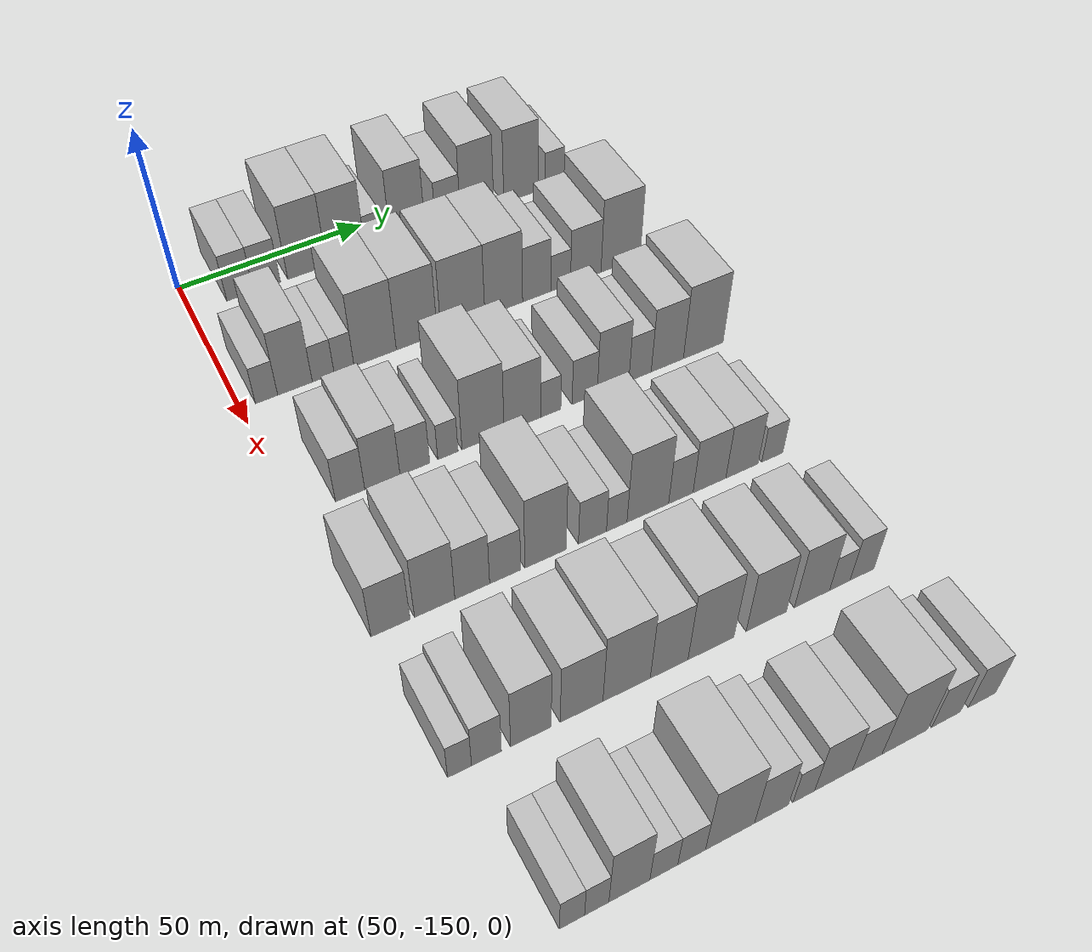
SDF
<sdf version="1.6">
 <world name="default">
  <model name="building_49">
   <static>1</static>
   <pose>50.0000 -137.1709 0 0.000000 0.000000 0.000000</pose>
   <link name="link">
    <pose>0 0 7.50 0 0 0</pose>
    <collision name="collision"><geometry><box><size>20.0000 7.0384 15.0000</size></box></geometry></collision>
    <visual name="visual">
     <cast_shadows>0</cast_shadows>
     <geometry><box><size>20.0000 7.0384 15.0000</size></box></geometry>
     <material>
      <script>
       <uri>model://HANNAS_wall/materials/scripts</uri>
       <uri>model://HANNAS_wall/materials/textures</uri>
       <name>vrc/HANNAS_wall</name>
      </script>
     </material>
    </visual>
   </link>
  </model>
  <model name="building_50">
   <static>1</static>
   <pose>50.0000 -130.0520 0 0.000000 0.000000 0.000000</pose>
   <link name="link">
    <pose>0 0 7.50 0 0 0</pose>
    <collision name="collision"><geometry><box><size>20.0000 7.1993 15.0000</size></box></geometry></collision>
    <visual name="visual">
     <cast_shadows>0</cast_shadows>
     <geometry><box><size>20.0000 7.1993 15.0000</size></box></geometry>
     <material>
      <script>
       <uri>model://HANNAS_wall/materials/scripts</uri>
       <uri>model://HANNAS_wall/materials/textures</uri>
       <name>vrc/HANNAS_wall</name>
      </script>
     </material>
    </visual>
   </link>
  </model>
  <model name="building_51">
   <static>1</static>
   <pose>50.0000 -119.1671 0 0.000000 0.000000 0.000000</pose>
   <link name="link">
    <pose>0 0 12.00 0 0 0</pose>
    <collision name="collision"><geometry><box><size>20.0000 10.5705 24.0000</size></box></geometry></collision>
    <visual name="visual">
     <cast_shadows>0</cast_shadows>
     <geometry><box><size>20.0000 10.5705 24.0000</size></box></geometry>
     <material>
      <script>
       <uri>model://HANNAS_wall/materials/scripts</uri>
       <uri>model://HANNAS_wall/materials/textures</uri>
       <name>vrc/HANNAS_wall</name>
      </script>
     </material>
    </visual>
   </link>
  </model>
  <model name="building_52">
   <static>1</static>
   <pose>50.0000 -108.5441 0 0.000000 0.000000 0.000000</pose>
   <link name="link">
    <pose>0 0 12.00 0 0 0</pose>
    <collision name="collision"><geometry><box><size>20.0000 10.6756 24.0000</size></box></geometry></collision>
    <visual name="visual">
     <cast_shadows>0</cast_shadows>
     <geometry><box><size>20.0000 10.6756 24.0000</size></box></geometry>
     <material>
      <script>
       <uri>model://HANNAS_wall/materials/scripts</uri>
       <uri>model://HANNAS_wall/materials/textures</uri>
       <name>vrc/HANNAS_wall</name>
      </script>
     </material>
    </visual>
   </link>
  </model>
  <model name="building_53">
   <static>1</static>
   <pose>50.0000 -100.6316 0 0.000000 0.000000 0.000000</pose>
   <link name="link">
    <pose>0 0 6.00 0 0 0</pose>
    <collision name="collision"><geometry><box><size>20.0000 5.1494 12.0000</size></box></geometry></collision>
    <visual name="visual">
     <cast_shadows>0</cast_shadows>
     <geometry><box><size>20.0000 5.1494 12.0000</size></box></geometry>
     <material>
      <script>
       <uri>model://HANNAS_wall/materials/scripts</uri>
       <uri>model://HANNAS_wall/materials/textures</uri>
       <name>vrc/HANNAS_wall</name>
      </script>
     </material>
    </visual>
   </link>
  </model>
  <model name="building_54">
   <static>1</static>
   <pose>50.0000 -91.1254 0 0.000000 0.000000 0.000000</pose>
   <link name="link">
    <pose>0 0 12.00 0 0 0</pose>
    <collision name="collision"><geometry><box><size>20.0000 9.8629 24.0000</size></box></geometry></collision>
    <visual name="visual">
     <cast_shadows>0</cast_shadows>
     <geometry><box><size>20.0000 9.8629 24.0000</size></box></geometry>
     <material>
      <script>
       <uri>model://HANNAS_wall/materials/scripts</uri>
       <uri>model://HANNAS_wall/materials/textures</uri>
       <name>vrc/HANNAS_wall</name>
      </script>
     </material>
    </visual>
   </link>
  </model>
  <model name="building_55">
   <static>1</static>
   <pose>50.0000 -79.5710 0 0.000000 0.000000 0.000000</pose>
   <link name="link">
    <pose>0 0 7.50 0 0 0</pose>
    <collision name="collision"><geometry><box><size>20.0000 7.2459 15.0000</size></box></geometry></collision>
    <visual name="visual">
     <cast_shadows>0</cast_shadows>
     <geometry><box><size>20.0000 7.2459 15.0000</size></box></geometry>
     <material>
      <script>
       <uri>model://HANNAS_wall/materials/scripts</uri>
       <uri>model://HANNAS_wall/materials/textures</uri>
       <name>vrc/HANNAS_wall</name>
      </script>
     </material>
    </visual>
   </link>
  </model>
  <model name="building_56">
   <static>1</static>
   <pose>50.0000 -71.0310 0 0.000000 0.000000 0.000000</pose>
   <link name="link">
    <pose>0 0 12.00 0 0 0</pose>
    <collision name="collision"><geometry><box><size>20.0000 9.8340 24.0000</size></box></geometry></collision>
    <visual name="visual">
     <cast_shadows>0</cast_shadows>
     <geometry><box><size>20.0000 9.8340 24.0000</size></box></geometry>
     <material>
      <script>
       <uri>model://HANNAS_wall/materials/scripts</uri>
       <uri>model://HANNAS_wall/materials/textures</uri>
       <name>vrc/HANNAS_wall</name>
      </script>
     </material>
    </visual>
   </link>
  </model>
  <model name="building_57">
   <static>1</static>
   <pose>50.0000 -57.8499 0 0.000000 0.000000 0.000000</pose>
   <link name="link">
    <pose>0 0 12.00 0 0 0</pose>
    <collision name="collision"><geometry><box><size>20.0000 10.5282 24.0000</size></box></geometry></collision>
    <visual name="visual">
     <cast_shadows>0</cast_shadows>
     <geometry><box><size>20.0000 10.5282 24.0000</size></box></geometry>
     <material>
      <script>
       <uri>model://HANNAS_wall/materials/scripts</uri>
       <uri>model://HANNAS_wall/materials/textures</uri>
       <name>vrc/HANNAS_wall</name>
      </script>
     </material>
    </visual>
   </link>
  </model>
  <model name="building_58">
   <static>1</static>
   <pose>50.0000 -47.6868 0 0.000000 0.000000 0.000000</pose>
   <link name="link">
    <pose>0 0 6.00 0 0 0</pose>
    <collision name="collision"><geometry><box><size>20.0000 5.7981 12.0000</size></box></geometry></collision>
    <visual name="visual">
     <cast_shadows>0</cast_shadows>
     <geometry><box><size>20.0000 5.7981 12.0000</size></box></geometry>
     <material>
      <script>
       <uri>model://HANNAS_wall/materials/scripts</uri>
       <uri>model://HANNAS_wall/materials/textures</uri>
       <name>vrc/HANNAS_wall</name>
      </script>
     </material>
    </visual>
   </link>
  </model>
  <model name="building_173">
   <static>1</static>
   <pose>85.0000 -143.4354 0 0.000000 0.000000 0.000000</pose>
   <link name="link">
    <pose>0 0 6.00 0 0 0</pose>
    <collision name="collision"><geometry><box><size>20.0000 5.5466 12.0000</size></box></geometry></collision>
    <visual name="visual">
     <cast_shadows>0</cast_shadows>
     <geometry><box><size>20.0000 5.5466 12.0000</size></box></geometry>
     <material>
      <script>
       <uri>model://HANNAS_wall/materials/scripts</uri>
       <uri>model://HANNAS_wall/materials/textures</uri>
       <name>vrc/HANNAS_wall</name>
      </script>
     </material>
    </visual>
   </link>
  </model>
  <model name="building_174">
   <static>1</static>
   <pose>85.0000 -136.2923 0 0.000000 0.000000 0.000000</pose>
   <link name="link">
    <pose>0 0 10.50 0 0 0</pose>
    <collision name="collision"><geometry><box><size>20.0000 8.7397 21.0000</size></box></geometry></collision>
    <visual name="visual">
     <cast_shadows>0</cast_shadows>
     <geometry><box><size>20.0000 8.7397 21.0000</size></box></geometry>
     <material>
      <script>
       <uri>model://HANNAS_wall/materials/scripts</uri>
       <uri>model://HANNAS_wall/materials/textures</uri>
       <name>vrc/HANNAS_wall</name>
      </script>
     </material>
    </visual>
   </link>
  </model>
  <model name="building_175">
   <static>1</static>
   <pose>85.0000 -129.1455 0 0.000000 0.000000 0.000000</pose>
   <link name="link">
    <pose>0 0 6.00 0 0 0</pose>
    <collision name="collision"><geometry><box><size>20.0000 5.5538 12.0000</size></box></geometry></collision>
    <visual name="visual">
     <cast_shadows>0</cast_shadows>
     <geometry><box><size>20.0000 5.5538 12.0000</size></box></geometry>
     <material>
      <script>
       <uri>model://HANNAS_wall/materials/scripts</uri>
       <uri>model://HANNAS_wall/materials/textures</uri>
       <name>vrc/HANNAS_wall</name>
      </script>
     </material>
    </visual>
   </link>
  </model>
  <model name="building_176">
   <static>1</static>
   <pose>85.0000 -123.8067 0 0.000000 0.000000 0.000000</pose>
   <link name="link">
    <pose>0 0 6.00 0 0 0</pose>
    <collision name="collision"><geometry><box><size>20.0000 5.1237 12.0000</size></box></geometry></collision>
    <visual name="visual">
     <cast_shadows>0</cast_shadows>
     <geometry><box><size>20.0000 5.1237 12.0000</size></box></geometry>
     <material>
      <script>
       <uri>model://HANNAS_wall/materials/scripts</uri>
       <uri>model://HANNAS_wall/materials/textures</uri>
       <name>vrc/HANNAS_wall</name>
      </script>
     </material>
    </visual>
   </link>
  </model>
  <model name="building_177">
   <static>1</static>
   <pose>85.0000 -115.7105 0 0.000000 0.000000 0.000000</pose>
   <link name="link">
    <pose>0 0 12.00 0 0 0</pose>
    <collision name="collision"><geometry><box><size>20.0000 11.0686 24.0000</size></box></geometry></collision>
    <visual name="visual">
     <cast_shadows>0</cast_shadows>
     <geometry><box><size>20.0000 11.0686 24.0000</size></box></geometry>
     <material>
      <script>
       <uri>model://HANNAS_wall/materials/scripts</uri>
       <uri>model://HANNAS_wall/materials/textures</uri>
       <name>vrc/HANNAS_wall</name>
      </script>
     </material>
    </visual>
   </link>
  </model>
  <model name="building_178">
   <static>1</static>
   <pose>85.0000 -104.7043 0 0.000000 0.000000 0.000000</pose>
   <link name="link">
    <pose>0 0 12.00 0 0 0</pose>
    <collision name="collision"><geometry><box><size>20.0000 10.9438 24.0000</size></box></geometry></collision>
    <visual name="visual">
     <cast_shadows>0</cast_shadows>
     <geometry><box><size>20.0000 10.9438 24.0000</size></box></geometry>
     <material>
      <script>
       <uri>model://HANNAS_wall/materials/scripts</uri>
       <uri>model://HANNAS_wall/materials/textures</uri>
       <name>vrc/HANNAS_wall</name>
      </script>
     </material>
    </visual>
   </link>
  </model>
  <model name="building_179">
   <static>1</static>
   <pose>85.0000 -92.2445 0 0.000000 0.000000 0.000000</pose>
   <link name="link">
    <pose>0 0 12.00 0 0 0</pose>
    <collision name="collision"><geometry><box><size>20.0000 11.9758 24.0000</size></box></geometry></collision>
    <visual name="visual">
     <cast_shadows>0</cast_shadows>
     <geometry><box><size>20.0000 11.9758 24.0000</size></box></geometry>
     <material>
      <script>
       <uri>model://HANNAS_wall/materials/scripts</uri>
       <uri>model://HANNAS_wall/materials/textures</uri>
       <name>vrc/HANNAS_wall</name>
      </script>
     </material>
    </visual>
   </link>
  </model>
  <model name="building_180">
   <static>1</static>
   <pose>85.0000 -81.0011 0 0.000000 0.000000 0.000000</pose>
   <link name="link">
    <pose>0 0 12.00 0 0 0</pose>
    <collision name="collision"><geometry><box><size>20.0000 10.5111 24.0000</size></box></geometry></collision>
    <visual name="visual">
     <cast_shadows>0</cast_shadows>
     <geometry><box><size>20.0000 10.5111 24.0000</size></box></geometry>
     <material>
      <script>
       <uri>model://HANNAS_wall/materials/scripts</uri>
       <uri>model://HANNAS_wall/materials/textures</uri>
       <name>vrc/HANNAS_wall</name>
      </script>
     </material>
    </visual>
   </link>
  </model>
  <model name="building_181">
   <static>1</static>
   <pose>85.0000 -71.7734 0 0.000000 0.000000 0.000000</pose>
   <link name="link">
    <pose>0 0 9.00 0 0 0</pose>
    <collision name="collision"><geometry><box><size>20.0000 7.9443 18.0000</size></box></geometry></collision>
    <visual name="visual">
     <cast_shadows>0</cast_shadows>
     <geometry><box><size>20.0000 7.9443 18.0000</size></box></geometry>
     <material>
      <script>
       <uri>model://HANNAS_wall/materials/scripts</uri>
       <uri>model://HANNAS_wall/materials/textures</uri>
       <name>vrc/HANNAS_wall</name>
      </script>
     </material>
    </visual>
   </link>
  </model>
  <model name="building_182">
   <static>1</static>
   <pose>85.0000 -64.9658 0 0.000000 0.000000 0.000000</pose>
   <link name="link">
    <pose>0 0 6.00 0 0 0</pose>
    <collision name="collision"><geometry><box><size>20.0000 5.6707 12.0000</size></box></geometry></collision>
    <visual name="visual">
     <cast_shadows>0</cast_shadows>
     <geometry><box><size>20.0000 5.6707 12.0000</size></box></geometry>
     <material>
      <script>
       <uri>model://HANNAS_wall/materials/scripts</uri>
       <uri>model://HANNAS_wall/materials/textures</uri>
       <name>vrc/HANNAS_wall</name>
      </script>
     </material>
    </visual>
   </link>
  </model>
  <model name="building_183">
   <static>1</static>
   <pose>85.0000 -57.6997 0 0.000000 0.000000 0.000000</pose>
   <link name="link">
    <pose>0 0 9.00 0 0 0</pose>
    <collision name="collision"><geometry><box><size>20.0000 8.8616 18.0000</size></box></geometry></collision>
    <visual name="visual">
     <cast_shadows>0</cast_shadows>
     <geometry><box><size>20.0000 8.8616 18.0000</size></box></geometry>
     <material>
      <script>
       <uri>model://HANNAS_wall/materials/scripts</uri>
       <uri>model://HANNAS_wall/materials/textures</uri>
       <name>vrc/HANNAS_wall</name>
      </script>
     </material>
    </visual>
   </link>
  </model>
  <model name="building_184">
   <static>1</static>
   <pose>85.0000 -47.5131 0 0.000000 0.000000 0.000000</pose>
   <link name="link">
    <pose>0 0 12.00 0 0 0</pose>
    <collision name="collision"><geometry><box><size>20.0000 11.5117 24.0000</size></box></geometry></collision>
    <visual name="visual">
     <cast_shadows>0</cast_shadows>
     <geometry><box><size>20.0000 11.5117 24.0000</size></box></geometry>
     <material>
      <script>
       <uri>model://HANNAS_wall/materials/scripts</uri>
       <uri>model://HANNAS_wall/materials/textures</uri>
       <name>vrc/HANNAS_wall</name>
      </script>
     </material>
    </visual>
   </link>
  </model>
  <model name="building_300">
   <static>1</static>
   <pose>120.0000 -137.0904 0 0.000000 0.000000 0.000000</pose>
   <link name="link">
    <pose>0 0 7.50 0 0 0</pose>
    <collision name="collision"><geometry><box><size>20.0000 7.0070 15.0000</size></box></geometry></collision>
    <visual name="visual">
     <cast_shadows>0</cast_shadows>
     <geometry><box><size>20.0000 7.0070 15.0000</size></box></geometry>
     <material>
      <script>
       <uri>model://HANNAS_wall/materials/scripts</uri>
       <uri>model://HANNAS_wall/materials/textures</uri>
       <name>vrc/HANNAS_wall</name>
      </script>
     </material>
    </visual>
   </link>
  </model>
  <model name="building_301">
   <static>1</static>
   <pose>120.0000 -129.3031 0 0.000000 0.000000 0.000000</pose>
   <link name="link">
    <pose>0 0 9.00 0 0 0</pose>
    <collision name="collision"><geometry><box><size>20.0000 8.5675 18.0000</size></box></geometry></collision>
    <visual name="visual">
     <cast_shadows>0</cast_shadows>
     <geometry><box><size>20.0000 8.5675 18.0000</size></box></geometry>
     <material>
      <script>
       <uri>model://HANNAS_wall/materials/scripts</uri>
       <uri>model://HANNAS_wall/materials/textures</uri>
       <name>vrc/HANNAS_wall</name>
      </script>
     </material>
    </visual>
   </link>
  </model>
  <model name="building_302">
   <static>1</static>
   <pose>120.0000 -121.3452 0 0.000000 0.000000 0.000000</pose>
   <link name="link">
    <pose>0 0 7.50 0 0 0</pose>
    <collision name="collision"><geometry><box><size>20.0000 7.3483 15.0000</size></box></geometry></collision>
    <visual name="visual">
     <cast_shadows>0</cast_shadows>
     <geometry><box><size>20.0000 7.3483 15.0000</size></box></geometry>
     <material>
      <script>
       <uri>model://HANNAS_wall/materials/scripts</uri>
       <uri>model://HANNAS_wall/materials/textures</uri>
       <name>vrc/HANNAS_wall</name>
      </script>
     </material>
    </visual>
   </link>
  </model>
  <model name="building_303">
   <static>1</static>
   <pose>120.0000 -113.1312 0 0.000000 0.000000 0.000000</pose>
   <link name="link">
    <pose>0 0 6.00 0 0 0</pose>
    <collision name="collision"><geometry><box><size>20.0000 5.0798 12.0000</size></box></geometry></collision>
    <visual name="visual">
     <cast_shadows>0</cast_shadows>
     <geometry><box><size>20.0000 5.0798 12.0000</size></box></geometry>
     <material>
      <script>
       <uri>model://HANNAS_wall/materials/scripts</uri>
       <uri>model://HANNAS_wall/materials/textures</uri>
       <name>vrc/HANNAS_wall</name>
      </script>
     </material>
    </visual>
   </link>
  </model>
  <model name="building_304">
   <static>1</static>
   <pose>120.0000 -104.2169 0 0.000000 0.000000 0.000000</pose>
   <link name="link">
    <pose>0 0 12.00 0 0 0</pose>
    <collision name="collision"><geometry><box><size>20.0000 10.7487 24.0000</size></box></geometry></collision>
    <visual name="visual">
     <cast_shadows>0</cast_shadows>
     <geometry><box><size>20.0000 10.7487 24.0000</size></box></geometry>
     <material>
      <script>
       <uri>model://HANNAS_wall/materials/scripts</uri>
       <uri>model://HANNAS_wall/materials/textures</uri>
       <name>vrc/HANNAS_wall</name>
      </script>
     </material>
    </visual>
   </link>
  </model>
  <model name="building_305">
   <static>1</static>
   <pose>120.0000 -94.1058 0 0.000000 0.000000 0.000000</pose>
   <link name="link">
    <pose>0 0 10.50 0 0 0</pose>
    <collision name="collision"><geometry><box><size>20.0000 9.4737 21.0000</size></box></geometry></collision>
    <visual name="visual">
     <cast_shadows>0</cast_shadows>
     <geometry><box><size>20.0000 9.4737 21.0000</size></box></geometry>
     <material>
      <script>
       <uri>model://HANNAS_wall/materials/scripts</uri>
       <uri>model://HANNAS_wall/materials/textures</uri>
       <name>vrc/HANNAS_wall</name>
      </script>
     </material>
    </visual>
   </link>
  </model>
  <model name="building_306">
   <static>1</static>
   <pose>120.0000 -86.6951 0 0.000000 0.000000 0.000000</pose>
   <link name="link">
    <pose>0 0 6.00 0 0 0</pose>
    <collision name="collision"><geometry><box><size>20.0000 5.3476 12.0000</size></box></geometry></collision>
    <visual name="visual">
     <cast_shadows>0</cast_shadows>
     <geometry><box><size>20.0000 5.3476 12.0000</size></box></geometry>
     <material>
      <script>
       <uri>model://HANNAS_wall/materials/scripts</uri>
       <uri>model://HANNAS_wall/materials/textures</uri>
       <name>vrc/HANNAS_wall</name>
      </script>
     </material>
    </visual>
   </link>
  </model>
  <model name="building_307">
   <static>1</static>
   <pose>120.0000 -77.6436 0 0.000000 0.000000 0.000000</pose>
   <link name="link">
    <pose>0 0 7.50 0 0 0</pose>
    <collision name="collision"><geometry><box><size>20.0000 6.7555 15.0000</size></box></geometry></collision>
    <visual name="visual">
     <cast_shadows>0</cast_shadows>
     <geometry><box><size>20.0000 6.7555 15.0000</size></box></geometry>
     <material>
      <script>
       <uri>model://HANNAS_wall/materials/scripts</uri>
       <uri>model://HANNAS_wall/materials/textures</uri>
       <name>vrc/HANNAS_wall</name>
      </script>
     </material>
    </visual>
   </link>
  </model>
  <model name="building_308">
   <static>1</static>
   <pose>120.0000 -69.9623 0 0.000000 0.000000 0.000000</pose>
   <link name="link">
    <pose>0 0 10.50 0 0 0</pose>
    <collision name="collision"><geometry><box><size>20.0000 8.6073 21.0000</size></box></geometry></collision>
    <visual name="visual">
     <cast_shadows>0</cast_shadows>
     <geometry><box><size>20.0000 8.6073 21.0000</size></box></geometry>
     <material>
      <script>
       <uri>model://HANNAS_wall/materials/scripts</uri>
       <uri>model://HANNAS_wall/materials/textures</uri>
       <name>vrc/HANNAS_wall</name>
      </script>
     </material>
    </visual>
   </link>
  </model>
  <model name="building_309">
   <static>1</static>
   <pose>120.0000 -62.5676 0 0.000000 0.000000 0.000000</pose>
   <link name="link">
    <pose>0 0 7.50 0 0 0</pose>
    <collision name="collision"><geometry><box><size>20.0000 6.1821 15.0000</size></box></geometry></collision>
    <visual name="visual">
     <cast_shadows>0</cast_shadows>
     <geometry><box><size>20.0000 6.1821 15.0000</size></box></geometry>
     <material>
      <script>
       <uri>model://HANNAS_wall/materials/scripts</uri>
       <uri>model://HANNAS_wall/materials/textures</uri>
       <name>vrc/HANNAS_wall</name>
      </script>
     </material>
    </visual>
   </link>
  </model>
  <model name="building_310">
   <static>1</static>
   <pose>120.0000 -54.9709 0 0.000000 0.000000 0.000000</pose>
   <link name="link">
    <pose>0 0 10.50 0 0 0</pose>
    <collision name="collision"><geometry><box><size>20.0000 9.0113 21.0000</size></box></geometry></collision>
    <visual name="visual">
     <cast_shadows>0</cast_shadows>
     <geometry><box><size>20.0000 9.0113 21.0000</size></box></geometry>
     <material>
      <script>
       <uri>model://HANNAS_wall/materials/scripts</uri>
       <uri>model://HANNAS_wall/materials/textures</uri>
       <name>vrc/HANNAS_wall</name>
      </script>
     </material>
    </visual>
   </link>
  </model>
  <model name="building_311">
   <static>1</static>
   <pose>120.0000 -44.8141 0 0.000000 0.000000 0.000000</pose>
   <link name="link">
    <pose>0 0 12.00 0 0 0</pose>
    <collision name="collision"><geometry><box><size>20.0000 11.3023 24.0000</size></box></geometry></collision>
    <visual name="visual">
     <cast_shadows>0</cast_shadows>
     <geometry><box><size>20.0000 11.3023 24.0000</size></box></geometry>
     <material>
      <script>
       <uri>model://HANNAS_wall/materials/scripts</uri>
       <uri>model://HANNAS_wall/materials/textures</uri>
       <name>vrc/HANNAS_wall</name>
      </script>
     </material>
    </visual>
   </link>
  </model>
  <model name="building_429">
   <static>1</static>
   <pose>155.0000 -142.9471 0 0.000000 0.000000 0.000000</pose>
   <link name="link">
    <pose>0 0 9.00 0 0 0</pose>
    <collision name="collision"><geometry><box><size>20.0000 8.7784 18.0000</size></box></geometry></collision>
    <visual name="visual">
     <cast_shadows>0</cast_shadows>
     <geometry><box><size>20.0000 8.7784 18.0000</size></box></geometry>
     <material>
      <script>
       <uri>model://HANNAS_wall/materials/scripts</uri>
       <uri>model://HANNAS_wall/materials/textures</uri>
       <name>vrc/HANNAS_wall</name>
      </script>
     </material>
    </visual>
   </link>
  </model>
  <model name="building_430">
   <static>1</static>
   <pose>155.0000 -132.9243 0 0.000000 0.000000 0.000000</pose>
   <link name="link">
    <pose>0 0 10.50 0 0 0</pose>
    <collision name="collision"><geometry><box><size>20.0000 9.2673 21.0000</size></box></geometry></collision>
    <visual name="visual">
     <cast_shadows>0</cast_shadows>
     <geometry><box><size>20.0000 9.2673 21.0000</size></box></geometry>
     <material>
      <script>
       <uri>model://HANNAS_wall/materials/scripts</uri>
       <uri>model://HANNAS_wall/materials/textures</uri>
       <name>vrc/HANNAS_wall</name>
      </script>
     </material>
    </visual>
   </link>
  </model>
  <model name="building_431">
   <static>1</static>
   <pose>155.0000 -124.2358 0 0.000000 0.000000 0.000000</pose>
   <link name="link">
    <pose>0 0 9.00 0 0 0</pose>
    <collision name="collision"><geometry><box><size>20.0000 8.1099 18.0000</size></box></geometry></collision>
    <visual name="visual">
     <cast_shadows>0</cast_shadows>
     <geometry><box><size>20.0000 8.1099 18.0000</size></box></geometry>
     <material>
      <script>
       <uri>model://HANNAS_wall/materials/scripts</uri>
       <uri>model://HANNAS_wall/materials/textures</uri>
       <name>vrc/HANNAS_wall</name>
      </script>
     </material>
    </visual>
   </link>
  </model>
  <model name="building_432">
   <static>1</static>
   <pose>155.0000 -116.5117 0 0.000000 0.000000 0.000000</pose>
   <link name="link">
    <pose>0 0 7.50 0 0 0</pose>
    <collision name="collision"><geometry><box><size>20.0000 7.3382 15.0000</size></box></geometry></collision>
    <visual name="visual">
     <cast_shadows>0</cast_shadows>
     <geometry><box><size>20.0000 7.3382 15.0000</size></box></geometry>
     <material>
      <script>
       <uri>model://HANNAS_wall/materials/scripts</uri>
       <uri>model://HANNAS_wall/materials/textures</uri>
       <name>vrc/HANNAS_wall</name>
      </script>
     </material>
    </visual>
   </link>
  </model>
  <model name="building_433">
   <static>1</static>
   <pose>155.0000 -106.8305 0 0.000000 0.000000 0.000000</pose>
   <link name="link">
    <pose>0 0 12.00 0 0 0</pose>
    <collision name="collision"><geometry><box><size>20.0000 10.0242 24.0000</size></box></geometry></collision>
    <visual name="visual">
     <cast_shadows>0</cast_shadows>
     <geometry><box><size>20.0000 10.0242 24.0000</size></box></geometry>
     <material>
      <script>
       <uri>model://HANNAS_wall/materials/scripts</uri>
       <uri>model://HANNAS_wall/materials/textures</uri>
       <name>vrc/HANNAS_wall</name>
      </script>
     </material>
    </visual>
   </link>
  </model>
  <model name="building_434">
   <static>1</static>
   <pose>155.0000 -95.3442 0 0.000000 0.000000 0.000000</pose>
   <link name="link">
    <pose>0 0 7.50 0 0 0</pose>
    <collision name="collision"><geometry><box><size>20.0000 6.9484 15.0000</size></box></geometry></collision>
    <visual name="visual">
     <cast_shadows>0</cast_shadows>
     <geometry><box><size>20.0000 6.9484 15.0000</size></box></geometry>
     <material>
      <script>
       <uri>model://HANNAS_wall/materials/scripts</uri>
       <uri>model://HANNAS_wall/materials/textures</uri>
       <name>vrc/HANNAS_wall</name>
      </script>
     </material>
    </visual>
   </link>
  </model>
  <model name="building_435">
   <static>1</static>
   <pose>155.0000 -89.2987 0 0.000000 0.000000 0.000000</pose>
   <link name="link">
    <pose>0 0 6.00 0 0 0</pose>
    <collision name="collision"><geometry><box><size>20.0000 5.1425 12.0000</size></box></geometry></collision>
    <visual name="visual">
     <cast_shadows>0</cast_shadows>
     <geometry><box><size>20.0000 5.1425 12.0000</size></box></geometry>
     <material>
      <script>
       <uri>model://HANNAS_wall/materials/scripts</uri>
       <uri>model://HANNAS_wall/materials/textures</uri>
       <name>vrc/HANNAS_wall</name>
      </script>
     </material>
    </visual>
   </link>
  </model>
  <model name="building_436">
   <static>1</static>
   <pose>155.0000 -81.4072 0 0.000000 0.000000 0.000000</pose>
   <link name="link">
    <pose>0 0 12.00 0 0 0</pose>
    <collision name="collision"><geometry><box><size>20.0000 10.6406 24.0000</size></box></geometry></collision>
    <visual name="visual">
     <cast_shadows>0</cast_shadows>
     <geometry><box><size>20.0000 10.6406 24.0000</size></box></geometry>
     <material>
      <script>
       <uri>model://HANNAS_wall/materials/scripts</uri>
       <uri>model://HANNAS_wall/materials/textures</uri>
       <name>vrc/HANNAS_wall</name>
      </script>
     </material>
    </visual>
   </link>
  </model>
  <model name="building_437">
   <static>1</static>
   <pose>155.0000 -72.9206 0 0.000000 0.000000 0.000000</pose>
   <link name="link">
    <pose>0 0 7.50 0 0 0</pose>
    <collision name="collision"><geometry><box><size>20.0000 6.3326 15.0000</size></box></geometry></collision>
    <visual name="visual">
     <cast_shadows>0</cast_shadows>
     <geometry><box><size>20.0000 6.3326 15.0000</size></box></geometry>
     <material>
      <script>
       <uri>model://HANNAS_wall/materials/scripts</uri>
       <uri>model://HANNAS_wall/materials/textures</uri>
       <name>vrc/HANNAS_wall</name>
      </script>
     </material>
    </visual>
   </link>
  </model>
  <model name="building_438">
   <static>1</static>
   <pose>155.0000 -65.4319 0 0.000000 0.000000 0.000000</pose>
   <link name="link">
    <pose>0 0 9.00 0 0 0</pose>
    <collision name="collision"><geometry><box><size>20.0000 8.6448 18.0000</size></box></geometry></collision>
    <visual name="visual">
     <cast_shadows>0</cast_shadows>
     <geometry><box><size>20.0000 8.6448 18.0000</size></box></geometry>
     <material>
      <script>
       <uri>model://HANNAS_wall/materials/scripts</uri>
       <uri>model://HANNAS_wall/materials/textures</uri>
       <name>vrc/HANNAS_wall</name>
      </script>
     </material>
    </visual>
   </link>
  </model>
  <model name="building_439">
   <static>1</static>
   <pose>155.0000 -56.7973 0 0.000000 0.000000 0.000000</pose>
   <link name="link">
    <pose>0 0 9.00 0 0 0</pose>
    <collision name="collision"><geometry><box><size>20.0000 8.6245 18.0000</size></box></geometry></collision>
    <visual name="visual">
     <cast_shadows>0</cast_shadows>
     <geometry><box><size>20.0000 8.6245 18.0000</size></box></geometry>
     <material>
      <script>
       <uri>model://HANNAS_wall/materials/scripts</uri>
       <uri>model://HANNAS_wall/materials/textures</uri>
       <name>vrc/HANNAS_wall</name>
      </script>
     </material>
    </visual>
   </link>
  </model>
  <model name="building_440">
   <static>1</static>
   <pose>155.0000 -48.6245 0 0.000000 0.000000 0.000000</pose>
   <link name="link">
    <pose>0 0 6.00 0 0 0</pose>
    <collision name="collision"><geometry><box><size>20.0000 5.7211 12.0000</size></box></geometry></collision>
    <visual name="visual">
     <cast_shadows>0</cast_shadows>
     <geometry><box><size>20.0000 5.7211 12.0000</size></box></geometry>
     <material>
      <script>
       <uri>model://HANNAS_wall/materials/scripts</uri>
       <uri>model://HANNAS_wall/materials/textures</uri>
       <name>vrc/HANNAS_wall</name>
      </script>
     </material>
    </visual>
   </link>
  </model>
  <model name="building_560">
   <static>1</static>
   <pose>190.0000 -144.2094 0 0.000000 0.000000 0.000000</pose>
   <link name="link">
    <pose>0 0 6.00 0 0 0</pose>
    <collision name="collision"><geometry><box><size>20.0000 5.0836 12.0000</size></box></geometry></collision>
    <visual name="visual">
     <cast_shadows>0</cast_shadows>
     <geometry><box><size>20.0000 5.0836 12.0000</size></box></geometry>
     <material>
      <script>
       <uri>model://HANNAS_wall/materials/scripts</uri>
       <uri>model://HANNAS_wall/materials/textures</uri>
       <name>vrc/HANNAS_wall</name>
      </script>
     </material>
    </visual>
   </link>
  </model>
  <model name="building_561">
   <static>1</static>
   <pose>190.0000 -138.4706 0 0.000000 0.000000 0.000000</pose>
   <link name="link">
    <pose>0 0 7.50 0 0 0</pose>
    <collision name="collision"><geometry><box><size>20.0000 6.3941 15.0000</size></box></geometry></collision>
    <visual name="visual">
     <cast_shadows>0</cast_shadows>
     <geometry><box><size>20.0000 6.3941 15.0000</size></box></geometry>
     <material>
      <script>
       <uri>model://HANNAS_wall/materials/scripts</uri>
       <uri>model://HANNAS_wall/materials/textures</uri>
       <name>vrc/HANNAS_wall</name>
      </script>
     </material>
    </visual>
   </link>
  </model>
  <model name="building_562">
   <static>1</static>
   <pose>190.0000 -128.8282 0 0.000000 0.000000 0.000000</pose>
   <link name="link">
    <pose>0 0 10.50 0 0 0</pose>
    <collision name="collision"><geometry><box><size>20.0000 8.8908 21.0000</size></box></geometry></collision>
    <visual name="visual">
     <cast_shadows>0</cast_shadows>
     <geometry><box><size>20.0000 8.8908 21.0000</size></box></geometry>
     <material>
      <script>
       <uri>model://HANNAS_wall/materials/scripts</uri>
       <uri>model://HANNAS_wall/materials/textures</uri>
       <name>vrc/HANNAS_wall</name>
      </script>
     </material>
    </visual>
   </link>
  </model>
  <model name="building_563">
   <static>1</static>
   <pose>190.0000 -117.5763 0 0.000000 0.000000 0.000000</pose>
   <link name="link">
    <pose>0 0 10.50 0 0 0</pose>
    <collision name="collision"><geometry><box><size>20.0000 9.6130 21.0000</size></box></geometry></collision>
    <visual name="visual">
     <cast_shadows>0</cast_shadows>
     <geometry><box><size>20.0000 9.6130 21.0000</size></box></geometry>
     <material>
      <script>
       <uri>model://HANNAS_wall/materials/scripts</uri>
       <uri>model://HANNAS_wall/materials/textures</uri>
       <name>vrc/HANNAS_wall</name>
      </script>
     </material>
    </visual>
   </link>
  </model>
  <model name="building_564">
   <static>1</static>
   <pose>190.0000 -107.3121 0 0.000000 0.000000 0.000000</pose>
   <link name="link">
    <pose>0 0 12.00 0 0 0</pose>
    <collision name="collision"><geometry><box><size>20.0000 10.9155 24.0000</size></box></geometry></collision>
    <visual name="visual">
     <cast_shadows>0</cast_shadows>
     <geometry><box><size>20.0000 10.9155 24.0000</size></box></geometry>
     <material>
      <script>
       <uri>model://HANNAS_wall/materials/scripts</uri>
       <uri>model://HANNAS_wall/materials/textures</uri>
       <name>vrc/HANNAS_wall</name>
      </script>
     </material>
    </visual>
   </link>
  </model>
  <model name="building_565">
   <static>1</static>
   <pose>190.0000 -97.4167 0 0.000000 0.000000 0.000000</pose>
   <link name="link">
    <pose>0 0 10.50 0 0 0</pose>
    <collision name="collision"><geometry><box><size>20.0000 8.8752 21.0000</size></box></geometry></collision>
    <visual name="visual">
     <cast_shadows>0</cast_shadows>
     <geometry><box><size>20.0000 8.8752 21.0000</size></box></geometry>
     <material>
      <script>
       <uri>model://HANNAS_wall/materials/scripts</uri>
       <uri>model://HANNAS_wall/materials/textures</uri>
       <name>vrc/HANNAS_wall</name>
      </script>
     </material>
    </visual>
   </link>
  </model>
  <model name="building_566">
   <static>1</static>
   <pose>190.0000 -87.4558 0 0.000000 0.000000 0.000000</pose>
   <link name="link">
    <pose>0 0 12.00 0 0 0</pose>
    <collision name="collision"><geometry><box><size>20.0000 11.0466 24.0000</size></box></geometry></collision>
    <visual name="visual">
     <cast_shadows>0</cast_shadows>
     <geometry><box><size>20.0000 11.0466 24.0000</size></box></geometry>
     <material>
      <script>
       <uri>model://HANNAS_wall/materials/scripts</uri>
       <uri>model://HANNAS_wall/materials/textures</uri>
       <name>vrc/HANNAS_wall</name>
      </script>
     </material>
    </visual>
   </link>
  </model>
  <model name="building_567">
   <static>1</static>
   <pose>190.0000 -73.9538 0 0.000000 0.000000 0.000000</pose>
   <link name="link">
    <pose>0 0 10.50 0 0 0</pose>
    <collision name="collision"><geometry><box><size>20.0000 9.9574 21.0000</size></box></geometry></collision>
    <visual name="visual">
     <cast_shadows>0</cast_shadows>
     <geometry><box><size>20.0000 9.9574 21.0000</size></box></geometry>
     <material>
      <script>
       <uri>model://HANNAS_wall/materials/scripts</uri>
       <uri>model://HANNAS_wall/materials/textures</uri>
       <name>vrc/HANNAS_wall</name>
      </script>
     </material>
    </visual>
   </link>
  </model>
  <model name="building_568">
   <static>1</static>
   <pose>190.0000 -62.5000 0 0.000000 0.000000 0.000000</pose>
   <link name="link">
    <pose>0 0 10.50 0 0 0</pose>
    <collision name="collision"><geometry><box><size>20.0000 8.9501 21.0000</size></box></geometry></collision>
    <visual name="visual">
     <cast_shadows>0</cast_shadows>
     <geometry><box><size>20.0000 8.9501 21.0000</size></box></geometry>
     <material>
      <script>
       <uri>model://HANNAS_wall/materials/scripts</uri>
       <uri>model://HANNAS_wall/materials/textures</uri>
       <name>vrc/HANNAS_wall</name>
      </script>
     </material>
    </visual>
   </link>
  </model>
  <model name="building_569">
   <static>1</static>
   <pose>190.0000 -55.3824 0 0.000000 0.000000 0.000000</pose>
   <link name="link">
    <pose>0 0 6.00 0 0 0</pose>
    <collision name="collision"><geometry><box><size>20.0000 5.2850 12.0000</size></box></geometry></collision>
    <visual name="visual">
     <cast_shadows>0</cast_shadows>
     <geometry><box><size>20.0000 5.2850 12.0000</size></box></geometry>
     <material>
      <script>
       <uri>model://HANNAS_wall/materials/scripts</uri>
       <uri>model://HANNAS_wall/materials/textures</uri>
       <name>vrc/HANNAS_wall</name>
      </script>
     </material>
    </visual>
   </link>
  </model>
  <model name="building_570">
   <static>1</static>
   <pose>190.0000 -49.6521 0 0.000000 0.000000 0.000000</pose>
   <link name="link">
    <pose>0 0 7.50 0 0 0</pose>
    <collision name="collision"><geometry><box><size>20.0000 6.1756 15.0000</size></box></geometry></collision>
    <visual name="visual">
     <cast_shadows>0</cast_shadows>
     <geometry><box><size>20.0000 6.1756 15.0000</size></box></geometry>
     <material>
      <script>
       <uri>model://HANNAS_wall/materials/scripts</uri>
       <uri>model://HANNAS_wall/materials/textures</uri>
       <name>vrc/HANNAS_wall</name>
      </script>
     </material>
    </visual>
   </link>
  </model>
  <model name="building_685">
   <static>1</static>
   <pose>225.0000 -139.0853 0 0.000000 0.000000 0.000000</pose>
   <link name="link">
    <pose>0 0 6.00 0 0 0</pose>
    <collision name="collision"><geometry><box><size>20.0000 5.1019 12.0000</size></box></geometry></collision>
    <visual name="visual">
     <cast_shadows>0</cast_shadows>
     <geometry><box><size>20.0000 5.1019 12.0000</size></box></geometry>
     <material>
      <script>
       <uri>model://HANNAS_wall/materials/scripts</uri>
       <uri>model://HANNAS_wall/materials/textures</uri>
       <name>vrc/HANNAS_wall</name>
      </script>
     </material>
    </visual>
   </link>
  </model>
  <model name="building_686">
   <static>1</static>
   <pose>225.0000 -134.0405 0 0.000000 0.000000 0.000000</pose>
   <link name="link">
    <pose>0 0 6.00 0 0 0</pose>
    <collision name="collision"><geometry><box><size>20.0000 4.9876 12.0000</size></box></geometry></collision>
    <visual name="visual">
     <cast_shadows>0</cast_shadows>
     <geometry><box><size>20.0000 4.9876 12.0000</size></box></geometry>
     <material>
      <script>
       <uri>model://HANNAS_wall/materials/scripts</uri>
       <uri>model://HANNAS_wall/materials/textures</uri>
       <name>vrc/HANNAS_wall</name>
      </script>
     </material>
    </visual>
   </link>
  </model>
  <model name="building_687">
   <static>1</static>
   <pose>225.0000 -127.2758 0 0.000000 0.000000 0.000000</pose>
   <link name="link">
    <pose>0 0 10.50 0 0 0</pose>
    <collision name="collision"><geometry><box><size>20.0000 8.5419 21.0000</size></box></geometry></collision>
    <visual name="visual">
     <cast_shadows>0</cast_shadows>
     <geometry><box><size>20.0000 8.5419 21.0000</size></box></geometry>
     <material>
      <script>
       <uri>model://HANNAS_wall/materials/scripts</uri>
       <uri>model://HANNAS_wall/materials/textures</uri>
       <name>vrc/HANNAS_wall</name>
      </script>
     </material>
    </visual>
   </link>
  </model>
  <model name="building_688">
   <static>1</static>
   <pose>225.0000 -120.0396 0 0.000000 0.000000 0.000000</pose>
   <link name="link">
    <pose>0 0 6.00 0 0 0</pose>
    <collision name="collision"><geometry><box><size>20.0000 5.9305 12.0000</size></box></geometry></collision>
    <visual name="visual">
     <cast_shadows>0</cast_shadows>
     <geometry><box><size>20.0000 5.9305 12.0000</size></box></geometry>
     <material>
      <script>
       <uri>model://HANNAS_wall/materials/scripts</uri>
       <uri>model://HANNAS_wall/materials/textures</uri>
       <name>vrc/HANNAS_wall</name>
      </script>
     </material>
    </visual>
   </link>
  </model>
  <model name="building_689">
   <static>1</static>
   <pose>225.0000 -114.0980 0 0.000000 0.000000 0.000000</pose>
   <link name="link">
    <pose>0 0 6.00 0 0 0</pose>
    <collision name="collision"><geometry><box><size>20.0000 5.9527 12.0000</size></box></geometry></collision>
    <visual name="visual">
     <cast_shadows>0</cast_shadows>
     <geometry><box><size>20.0000 5.9527 12.0000</size></box></geometry>
     <material>
      <script>
       <uri>model://HANNAS_wall/materials/scripts</uri>
       <uri>model://HANNAS_wall/materials/textures</uri>
       <name>vrc/HANNAS_wall</name>
      </script>
     </material>
    </visual>
   </link>
  </model>
  <model name="building_690">
   <static>1</static>
   <pose>225.0000 -105.7323 0 0.000000 0.000000 0.000000</pose>
   <link name="link">
    <pose>0 0 12.00 0 0 0</pose>
    <collision name="collision"><geometry><box><size>20.0000 10.7787 24.0000</size></box></geometry></collision>
    <visual name="visual">
     <cast_shadows>0</cast_shadows>
     <geometry><box><size>20.0000 10.7787 24.0000</size></box></geometry>
     <material>
      <script>
       <uri>model://HANNAS_wall/materials/scripts</uri>
       <uri>model://HANNAS_wall/materials/textures</uri>
       <name>vrc/HANNAS_wall</name>
      </script>
     </material>
    </visual>
   </link>
  </model>
  <model name="building_691">
   <static>1</static>
   <pose>225.0000 -96.5235 0 0.000000 0.000000 0.000000</pose>
   <link name="link">
    <pose>0 0 9.00 0 0 0</pose>
    <collision name="collision"><geometry><box><size>20.0000 7.6390 18.0000</size></box></geometry></collision>
    <visual name="visual">
     <cast_shadows>0</cast_shadows>
     <geometry><box><size>20.0000 7.6390 18.0000</size></box></geometry>
     <material>
      <script>
       <uri>model://HANNAS_wall/materials/scripts</uri>
       <uri>model://HANNAS_wall/materials/textures</uri>
       <name>vrc/HANNAS_wall</name>
      </script>
     </material>
    </visual>
   </link>
  </model>
  <model name="building_692">
   <static>1</static>
   <pose>225.0000 -89.2207 0 0.000000 0.000000 0.000000</pose>
   <link name="link">
    <pose>0 0 6.00 0 0 0</pose>
    <collision name="collision"><geometry><box><size>20.0000 4.9666 12.0000</size></box></geometry></collision>
    <visual name="visual">
     <cast_shadows>0</cast_shadows>
     <geometry><box><size>20.0000 4.9666 12.0000</size></box></geometry>
     <material>
      <script>
       <uri>model://HANNAS_wall/materials/scripts</uri>
       <uri>model://HANNAS_wall/materials/textures</uri>
       <name>vrc/HANNAS_wall</name>
      </script>
     </material>
    </visual>
   </link>
  </model>
  <model name="building_693">
   <static>1</static>
   <pose>225.0000 -82.3545 0 0.000000 0.000000 0.000000</pose>
   <link name="link">
    <pose>0 0 9.00 0 0 0</pose>
    <collision name="collision"><geometry><box><size>20.0000 8.7656 18.0000</size></box></geometry></collision>
    <visual name="visual">
     <cast_shadows>0</cast_shadows>
     <geometry><box><size>20.0000 8.7656 18.0000</size></box></geometry>
     <material>
      <script>
       <uri>model://HANNAS_wall/materials/scripts</uri>
       <uri>model://HANNAS_wall/materials/textures</uri>
       <name>vrc/HANNAS_wall</name>
      </script>
     </material>
    </visual>
   </link>
  </model>
  <model name="building_694">
   <static>1</static>
   <pose>225.0000 -74.4678 0 0.000000 0.000000 0.000000</pose>
   <link name="link">
    <pose>0 0 7.50 0 0 0</pose>
    <collision name="collision"><geometry><box><size>20.0000 7.0077 15.0000</size></box></geometry></collision>
    <visual name="visual">
     <cast_shadows>0</cast_shadows>
     <geometry><box><size>20.0000 7.0077 15.0000</size></box></geometry>
     <material>
      <script>
       <uri>model://HANNAS_wall/materials/scripts</uri>
       <uri>model://HANNAS_wall/materials/textures</uri>
       <name>vrc/HANNAS_wall</name>
      </script>
     </material>
    </visual>
   </link>
  </model>
  <model name="building_695">
   <static>1</static>
   <pose>225.0000 -65.4646 0 0.000000 0.000000 0.000000</pose>
   <link name="link">
    <pose>0 0 12.00 0 0 0</pose>
    <collision name="collision"><geometry><box><size>20.0000 10.9987 24.0000</size></box></geometry></collision>
    <visual name="visual">
     <cast_shadows>0</cast_shadows>
     <geometry><box><size>20.0000 10.9987 24.0000</size></box></geometry>
     <material>
      <script>
       <uri>model://HANNAS_wall/materials/scripts</uri>
       <uri>model://HANNAS_wall/materials/textures</uri>
       <name>vrc/HANNAS_wall</name>
      </script>
     </material>
    </visual>
   </link>
  </model>
  <model name="building_696">
   <static>1</static>
   <pose>225.0000 -55.4056 0 0.000000 0.000000 0.000000</pose>
   <link name="link">
    <pose>0 0 7.50 0 0 0</pose>
    <collision name="collision"><geometry><box><size>20.0000 7.1194 15.0000</size></box></geometry></collision>
    <visual name="visual">
     <cast_shadows>0</cast_shadows>
     <geometry><box><size>20.0000 7.1194 15.0000</size></box></geometry>
     <material>
      <script>
       <uri>model://HANNAS_wall/materials/scripts</uri>
       <uri>model://HANNAS_wall/materials/textures</uri>
       <name>vrc/HANNAS_wall</name>
      </script>
     </material>
    </visual>
   </link>
  </model>
  <model name="building_697">
   <static>1</static>
   <pose>225.0000 -46.4156 0 0.000000 0.000000 0.000000</pose>
   <link name="link">
    <pose>0 0 7.50 0 0 0</pose>
    <collision name="collision"><geometry><box><size>20.0000 6.8606 15.0000</size></box></geometry></collision>
    <visual name="visual">
     <cast_shadows>0</cast_shadows>
     <geometry><box><size>20.0000 6.8606 15.0000</size></box></geometry>
     <material>
      <script>
       <uri>model://HANNAS_wall/materials/scripts</uri>
       <uri>model://HANNAS_wall/materials/textures</uri>
       <name>vrc/HANNAS_wall</name>
      </script>
     </material>
    </visual>
   </link>
  </model>
 </world>
</sdf>
